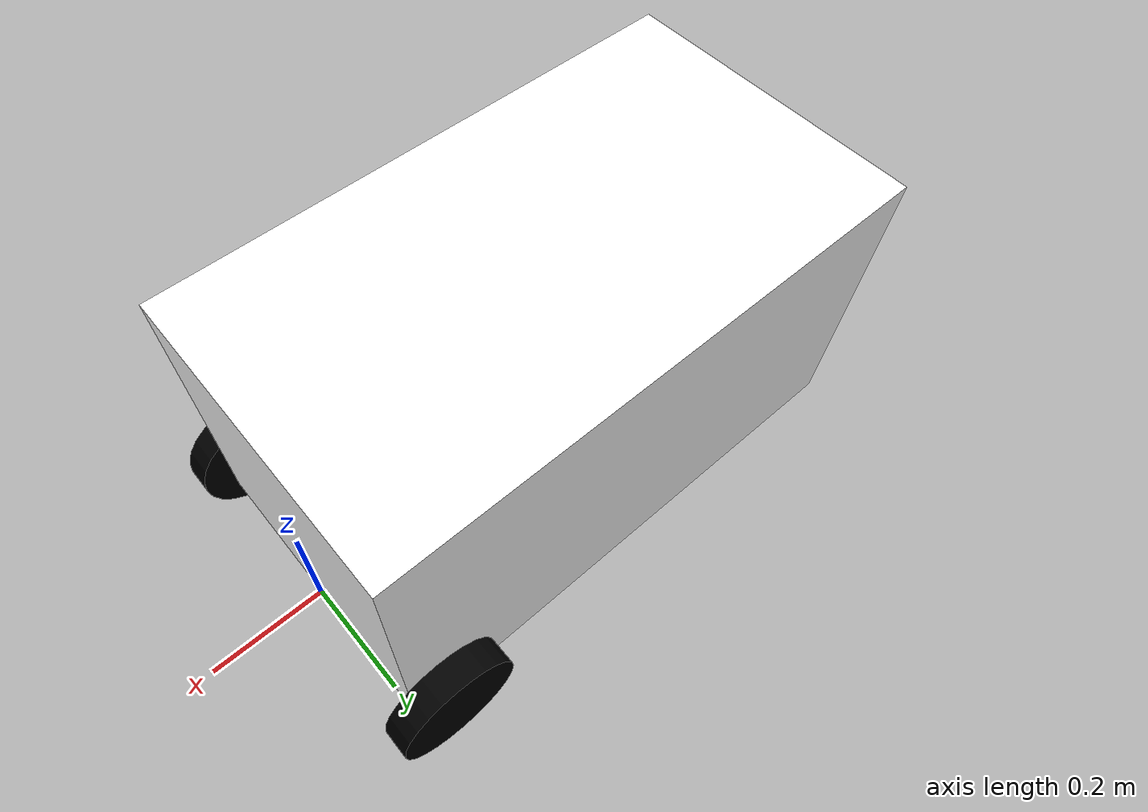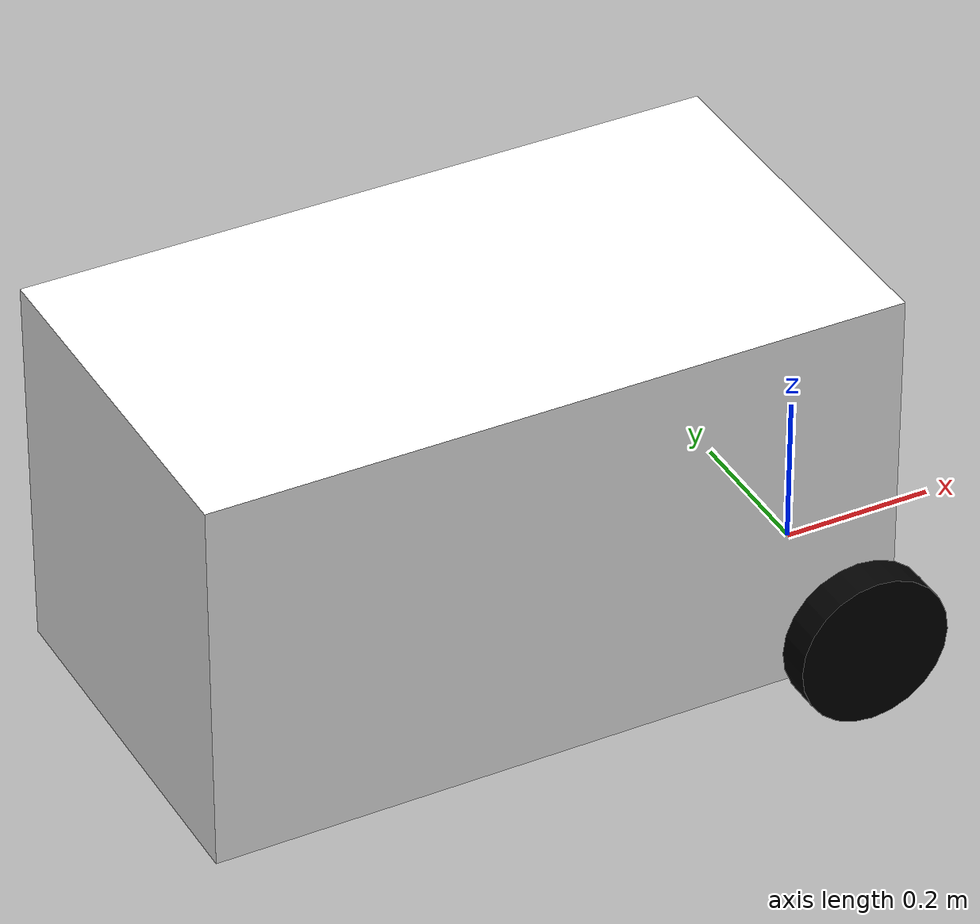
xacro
<?xml version="1.0"?>
<robot xmlns:xacro="https://www.ros.org/wiki/xacro">
  <!-- This file contains the core robot description -->
  <!-- This includes the frame of the robot and the wheels -->
  <!-- The robot is a differential drive robot with two wheels and a caster wheel -->

  <xacro:include filename="materials.xacro"/>
  <xacro:include filename="dimensions.xacro"/>
  <xacro:include filename="inertia_macros.xacro"/>

  <!-- BASE LINK -->

  <link name="base_link"/>

  <!-- BASE FOOTPRINT -->

  <link name="base_footprint"/>

  <joint name="base_footprint_joint" type="fixed">
    <parent link="base_footprint"/>
    <child link="base_link"/>
    <origin xyz="0 0 0" rpy="0 0 0"/>
  </joint>

  <!-- CHASSIS LINK -->

  <joint name="chassis_joint" type="fixed">
    <parent link="base_link"/>
    <child link="chassis_link"/>
    <origin xyz="0 0 0" rpy="0 0 0"/>
  </joint>

  <link name="chassis_link">
    <visual>
      <origin xyz="${-base_length / 2} 0 ${base_height / 2}" rpy="0 0 0"/>
      <geometry>
        <box size="${base_length} ${base_width} ${base_height}"/>
      </geometry>

      <material name="white"/>
    </visual>

    <collision>
      <origin xyz="${-base_length / 2} 0 ${base_height / 2}" rpy="0 0 0"/>
      <geometry>
        <box size="${base_length} ${base_width} ${base_height}"/>
      </geometry>
    </collision>

    <xacro:inertial_box mass="10.0" x="${base_length}" y="${base_width}" z="${base_height}">
      <origin xyz="${-base_length / 2} 0 ${base_height / 2}" rpy="0 0 0"/>
    </xacro:inertial_box>
  </link>

  <gazebo reference="chassis_link">
    <material>Gazebo/White</material>
  </gazebo>

  <!-- WHEELS -->

  <!-- LEFT WHEEL LINK -->

  <joint name="left_wheel_joint" type="continuous">
    <parent link="base_link"/>
    <child link="left_wheel_link"/>
    <origin xyz="${-wheel_x_offset} ${wheel_y_offset} ${wheel_z_offset}" rpy="-${pi / 2} 0.0 0.0"/>
    <axis xyz="0 0 -1"/>
  </joint>

  <link name="left_wheel_link">
    <visual>
      <geometry>
        <cylinder radius="${wheel_radius}" length="${wheel_width}"/>
      </geometry>

      <material name="black"/>
    </visual>

    <collision>
      <geometry>
        <cylinder radius="${wheel_radius}" length="${wheel_width}"/>
      </geometry>
    </collision>

    <xacro:inertial_cylinder mass="1.0" length="${wheel_width}" radius="${wheel_radius}">
      <origin xyz="0 0 0" rpy="0 0 0"/>
    </xacro:inertial_cylinder>
  </link>

  <gazebo reference="left_wheel_link">
    <material>Gazebo/Black</material>
  </gazebo>

  <!-- RIGHT WHEEL LINK -->

  <joint name="right_wheel_joint" type="continuous">
    <parent link="base_link"/>
    <child link="right_wheel_link"/>
    <origin xyz="${-wheel_x_offset} -${wheel_y_offset} ${wheel_z_offset}" rpy="${pi / 2} 0.0 0.0"/>
    <axis xyz="0 0 1"/>
  </joint>

  <link name="right_wheel_link">
    <visual>
      <geometry>
        <cylinder radius="${wheel_radius}" length="${wheel_width}"/>
      </geometry>

      <material name="black"/>
    </visual>

    <collision>
      <geometry>
        <cylinder radius="${wheel_radius}" length="${wheel_width}"/>
      </geometry>
    </collision>

    <xacro:inertial_cylinder mass="1.0" length="${wheel_width}" radius="${wheel_radius}">
      <origin xyz="0 0 0" rpy="0 0 0"/>
    </xacro:inertial_cylinder>
  </link>

  <gazebo reference="right_wheel_link">
    <material>Gazebo/Black</material>
  </gazebo>

  <!-- CASTER WHEEL LINK -->

  <joint name="caster_joint" type="fixed">
    <parent link="chassis_link"/>
    <child link="caster_wheel_link"/>
    <origin xyz="${-caster_x_offset} ${caster_y_offset} ${caster_z_offset}" rpy="0 0 0"/>
    <axis xyz="0 0 1"/>
  </joint>

  <link name="caster_wheel_link">
    <visual>
      <geometry>
        <sphere radius="${wheel_z_offset}"/>
      </geometry>

      <material name="black"/>
    </visual>

    <collision>
      <geometry>
        <sphere radius="${wheel_z_offset}"/>
      </geometry>
    </collision>

    <xacro:inertial_sphere mass="0.5" radius="${wheel_z_offset}">
      <origin xyz="0 0 0" rpy="0 0 0"/>
    </xacro:inertial_sphere>
  </link>

  <gazebo reference="caster_wheel_link">
      <material>Gazebo/Black</material>

      <!-- Frictionless-ish -->
      <!-- Stops the robot from jumping around -->
      <mu1 value="0.001"/>
      <mu2 value="0.001"/>
    </gazebo>

</robot>

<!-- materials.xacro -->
<robot xmlns:xacro="https://www.ros.org/wiki/xacro">
  <!-- This file contains the materials used in the robot description -->

  <material name="white">
    <color rgba="1 1 1 1"/>
  </material>

  <material name="black">
    <color rgba="0 0 0 1"/>
  </material>

  <material name="gray">
    <color rgba="0.5 0.5 0.5 1"/>
  </material>

  <material name="light_gray">
    <color rgba="0.75 0.75 0.75 1"/>
  </material>

  <material name="dark_gray">
    <color rgba="0.25 0.25 0.25 1"/>
  </material>

  <material name="red">
    <color rgba="1 0 0 1"/>
  </material>

  <material name="green">
    <color rgba="0 1 0 1"/>
  </material>

  <material name="blue">
    <color rgba="0 0 1 1"/>
  </material>

  <material name="yellow">
    <color rgba="1 1 0 1"/>
  </material>

  <material name="purple">
    <color rgba="0.5 0 0.5 1"/>
  </material>

  <material name="orange">
    <color rgba="1 0.5 0 1"/>
  </material>

  <material name="pink">
    <color rgba="1 0.75 0.8 1"/>
  </material>
</robot>

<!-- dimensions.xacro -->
<robot xmlns:xacro="https://www.ros.org/wiki/xacro">
  <!-- This file contains the dimensions of the robot -->
  <!-- The dimensions are defined in meters -->

  <!-- Convert mm to meters -->
  <xacro:property name="mm_to_m" value="${0.001}"/>

  <!-- Convert inches to meters -->
  <xacro:property name="in_to_m" value="${0.0254}"/>

  <!-- Base Chassis Dimensions -->
  <xacro:property name="chassis_offset" value="${(base_length / 2) - wheel_x_center_to_back - (wheel_radius / 1.5)}" />
  <xacro:property name="base_length" value="${0.914}"/>
  <xacro:property name="base_width" value="${0.508}"/>
  <xacro:property name="base_height" value="${0.508}"/>

  <!-- Wheel Dimensions / Location -->
  <xacro:property name="wheel_diameter" value="${203.101 * mm_to_m}"/>
  <xacro:property name="wheel_radius" value="${wheel_diameter / 2}"/>
  <xacro:property name="wheel_width" value="${48 * mm_to_m}"/>
  <xacro:property name="wheel_y_gap" value="${0.012}"/>
  <xacro:property name="wheel_z_offset" value="${wheel_radius - (1.5 * 0.041)}"/>
  <xacro:property name="wheel_y_offset" value="${(base_width / 2) + 2 * wheel_y_gap}"/>
  <xacro:property name="wheel_x_center_to_back" value="${.095}"/>
  <xacro:property name="wheel_x_offset" value="${(wheel_radius / 2)}"/>

  <!-- Caster Dimensions / Location -->
  <xacro:property name="caster_diameter" value="${0.052}"/>
  <xacro:property name="caster_radius" value="${caster_diameter / 2}"/>
  <xacro:property name="caster_width" value="${16 * mm_to_m}"/>
  <xacro:property name="caster_z_offset" value="${-0.012}"/>
  <xacro:property name="caster_y_offset" value="${0}"/>
  <xacro:property name="caster_x_front_to_caster" value="${0.0905}"/>
  <xacro:property name="caster_x_offset" value="${base_length - caster_x_front_to_caster - (10 * in_to_m)}"/>

  <!-- Lidar -->
  <xacro:property name="lidar_diameter" value="${0.070}"/>
  <xacro:property name="lidar_radius" value="${lidar_diameter / 2}"/>
  <xacro:property name="lidar_height" value="${0.051}"/>
  <xacro:property name="lidar_z_offset" value="${base_height + 0.04}"/>
  <xacro:property name="lidar_y_offset" value="${0.0}"/>
  <xacro:property name="lidar_x_offset" value="${4 * in_to_m}"/>

  <!-- GPS -->
  <xacro:property name="gps_diameter" value="${0.035}"/>
  <xacro:property name="gps_radius" value="${gps_diameter / 2}"/>
  <xacro:property name="gps_height" value="${0.02}"/>
  <xacro:property name="gps_z_offset" value="${base_height}"/>
  <xacro:property name="gps_y_offset" value="${0.0}"/>
  <xacro:property name="gps_x_offset" value="${11.5 * in_to_m}"/>

  <!-- Zed -->
  <xacro:arg name="camera_name"   default="zed" />
  <xacro:arg name="camera_model"  default="zed2i" />
  <xacro:arg name="use_zed_localization" default="true" />
  <xacro:property name="zed_z_offset" value="${0.508 + (8.75 * in_to_m)}"/>
  <xacro:property name="zed_y_offset" value="${0.0}"/>
  <xacro:property name="zed_x_offset" value="${8.5 * in_to_m}"/>

</robot>
